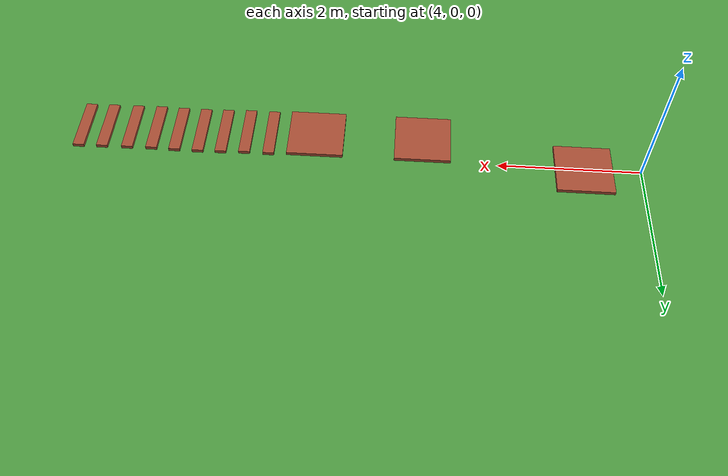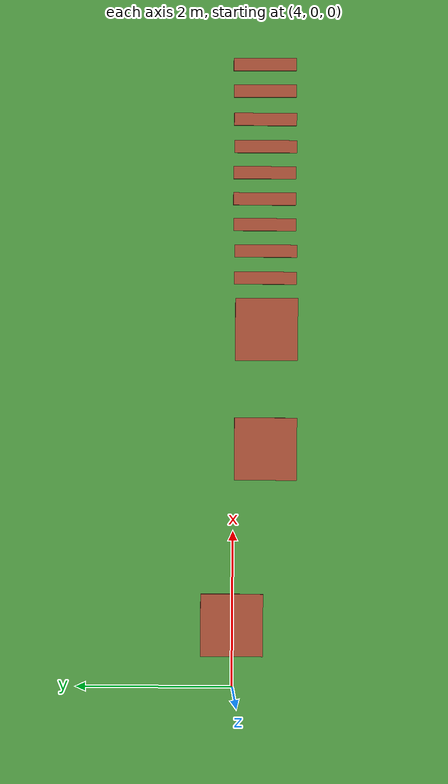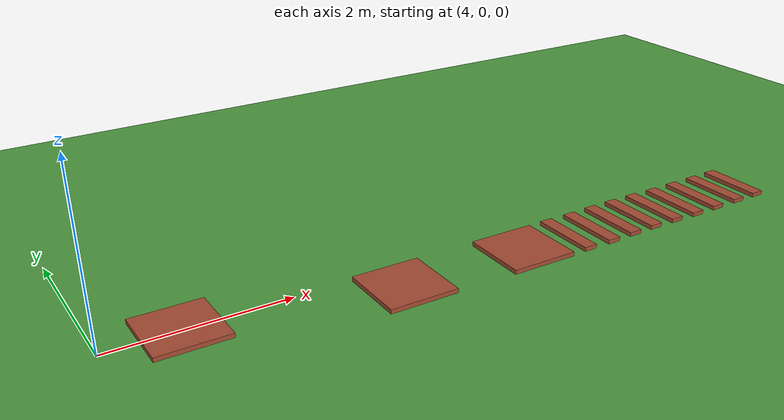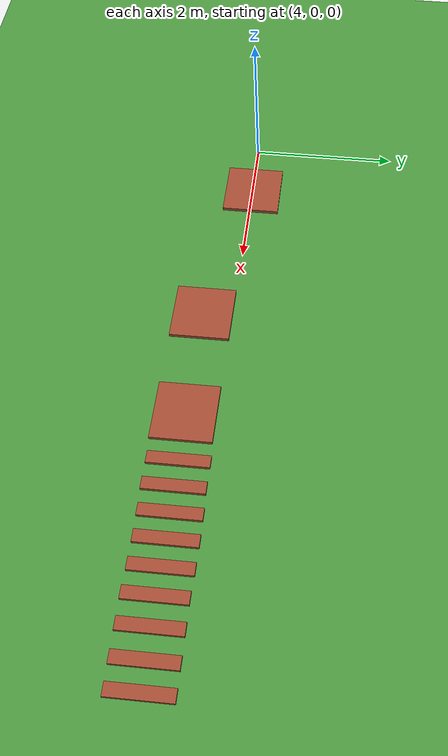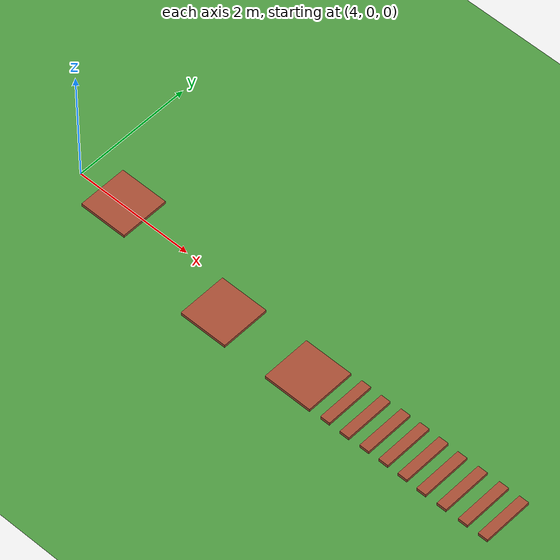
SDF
<sdf version="1.6">
 <world name="default">
  <model name="ground_plane">
   <static>1</static>
   <link name="link">
    <collision name="collision">
     <geometry><plane><normal>0 0 1</normal><size>100 100</size></plane></geometry>
     <surface>
      <contact><collide_bitmask>65535</collide_bitmask></contact>
      <friction><ode><mu>100</mu><mu2>50</mu2></ode></friction>
     </surface>
    </collision>
    <visual name="visual">
     <cast_shadows>0</cast_shadows>
     <geometry><plane><normal>0 0 1</normal><size>100 100</size></plane></geometry>
     <material>
      <script><uri>file://media/materials/scripts/gazebo.material</uri><name>Gazebo/Grass</name></script>
     </material>
    </visual>
   </link>
  </model>
  <model name="terrain_box_5cm_0_clone">
   <link name="link">
    <inertial>
     <mass>10</mass>
     <inertia><ixx>1.66667</ixx><ixy>0</ixy><ixz>0</ixz><iyy>1.66667</iyy><iyz>0</iyz><izz>1.66667</izz></inertia>
    </inertial>
    <sensor name="test" type="contact">
     <always_on>1</always_on>
     <update_rate>200</update_rate>
     <visualize>1</visualize>
     <contact><collision>collision</collision><topic>__default_topic__</topic></contact>
    </sensor>
    <visual name="visual">
     <geometry><box><size>0.8 0.8 0.05</size></box></geometry>
     <material>
      <script><name>Gazebo/Bricks</name><uri>file://media/materials/scripts/gazebo.material</uri></script>
      <shader type="vertex"><normal_map>__default__</normal_map></shader>
      <ambient>0.3 0.3 0.3 1</ambient>
      <diffuse>0.7 0.7 0.7 1</diffuse>
      <specular>0.01 0.01 0.01 1</specular>
      <emissive>0 0 0 1</emissive>
     </material>
    </visual>
    <collision name="collision">
     <geometry><box><size>0.8 0.8 0.05</size></box></geometry>
     <surface>
      <friction>
       <ode><mu>1</mu><mu2>1</mu2><fdir1>0 0 0</fdir1><slip1>0</slip1><slip2>0</slip2></ode>
       <torsional>
        <coefficient>1</coefficient>
        <patch_radius>0</patch_radius>
        <surface_radius>0</surface_radius>
        <use_patch_radius>1</use_patch_radius>
        <ode><slip>0</slip></ode>
       </torsional>
      </friction>
      <bounce><restitution_coefficient>0</restitution_coefficient><threshold>1e+06</threshold></bounce>
      <contact>
       <collide_without_contact>0</collide_without_contact>
       <collide_without_contact_bitmask>1</collide_without_contact_bitmask>
       <collide_bitmask>1</collide_bitmask>
       <ode>
        <soft_cfm>0</soft_cfm>
        <soft_erp>0.2</soft_erp>
        <kp>1e+13</kp>
        <kd>1</kd>
        <max_vel>0.01</max_vel>
        <min_depth>0.001</min_depth>
       </ode>
       <bullet>
        <split_impulse>1</split_impulse>
        <split_impulse_penetration_threshold>-0.01</split_impulse_penetration_threshold>
        <soft_cfm>0</soft_cfm>
        <soft_erp>0.2</soft_erp>
        <kp>1e+13</kp>
        <kd>1</kd>
       </bullet>
      </contact>
     </surface>
    </collision>
   </link>
   <static>1</static>
   <pose>4.80052 0.012674 0.024797 0 -0 0</pose>
  </model>
  <model name="terrain_box_5cm_0_clone_0_clone">
   <link name="link">
    <inertial>
     <mass>10</mass>
     <inertia><ixx>1.66667</ixx><ixy>0</ixy><ixz>0</ixz><iyy>1.66667</iyy><iyz>0</iyz><izz>1.66667</izz></inertia>
    </inertial>
    <sensor name="test" type="contact">
     <always_on>1</always_on>
     <update_rate>200</update_rate>
     <visualize>1</visualize>
     <contact><collision>collision</collision><topic>__default_topic__</topic></contact>
    </sensor>
    <visual name="visual">
     <geometry><box><size>0.8 0.8 0.05</size></box></geometry>
     <material>
      <script><name>Gazebo/Bricks</name><uri>file://media/materials/scripts/gazebo.material</uri></script>
      <shader type="vertex"><normal_map>__default__</normal_map></shader>
      <ambient>0.3 0.3 0.3 1</ambient>
      <diffuse>0.7 0.7 0.7 1</diffuse>
      <specular>0.01 0.01 0.01 1</specular>
      <emissive>0 0 0 1</emissive>
     </material>
    </visual>
    <collision name="collision">
     <geometry><box><size>0.8 0.8 0.05</size></box></geometry>
     <surface>
      <friction>
       <ode><mu>1</mu><mu2>1</mu2><fdir1>0 0 0</fdir1><slip1>0</slip1><slip2>0</slip2></ode>
       <torsional>
        <coefficient>1</coefficient>
        <patch_radius>0</patch_radius>
        <surface_radius>0</surface_radius>
        <use_patch_radius>1</use_patch_radius>
        <ode><slip>0</slip></ode>
       </torsional>
      </friction>
      <bounce><restitution_coefficient>0</restitution_coefficient><threshold>1e+06</threshold></bounce>
      <contact>
       <collide_without_contact>0</collide_without_contact>
       <collide_without_contact_bitmask>1</collide_without_contact_bitmask>
       <collide_bitmask>1</collide_bitmask>
       <ode>
        <soft_cfm>0</soft_cfm>
        <soft_erp>0.2</soft_erp>
        <kp>1e+13</kp>
        <kd>1</kd>
        <max_vel>0.01</max_vel>
        <min_depth>0.001</min_depth>
       </ode>
       <bullet>
        <split_impulse>1</split_impulse>
        <split_impulse_penetration_threshold>-0.01</split_impulse_penetration_threshold>
        <soft_cfm>0</soft_cfm>
        <soft_erp>0.2</soft_erp>
        <kp>1e+13</kp>
        <kd>1</kd>
       </bullet>
      </contact>
     </surface>
    </collision>
   </link>
   <static>1</static>
   <pose>7.06126 -0.406716 0.024797 0 -0 0</pose>
  </model>
  <model name="terrain_box_5cm_0_clone_0_clone_1">
   <link name="link">
    <inertial>
     <mass>10</mass>
     <inertia><ixx>1.66667</ixx><ixy>0</ixy><ixz>0</ixz><iyy>1.66667</iyy><iyz>0</iyz><izz>1.66667</izz></inertia>
    </inertial>
    <sensor name="test" type="contact">
     <always_on>1</always_on>
     <update_rate>200</update_rate>
     <visualize>1</visualize>
     <contact><collision>collision</collision><topic>__default_topic__</topic></contact>
    </sensor>
    <visual name="visual">
     <geometry><box><size>0.8 0.8 0.05</size></box></geometry>
     <material>
      <script><name>Gazebo/Bricks</name><uri>file://media/materials/scripts/gazebo.material</uri></script>
      <shader type="vertex"><normal_map>__default__</normal_map></shader>
      <ambient>0.3 0.3 0.3 1</ambient>
      <diffuse>0.7 0.7 0.7 1</diffuse>
      <specular>0.01 0.01 0.01 1</specular>
      <emissive>0 0 0 1</emissive>
     </material>
    </visual>
    <collision name="collision">
     <geometry><box><size>0.8 0.8 0.05</size></box></geometry>
     <surface>
      <friction>
       <ode><mu>1</mu><mu2>1</mu2><fdir1>0 0 0</fdir1><slip1>0</slip1><slip2>0</slip2></ode>
       <torsional>
        <coefficient>1</coefficient>
        <patch_radius>0</patch_radius>
        <surface_radius>0</surface_radius>
        <use_patch_radius>1</use_patch_radius>
        <ode><slip>0</slip></ode>
       </torsional>
      </friction>
      <bounce><restitution_coefficient>0</restitution_coefficient><threshold>1e+06</threshold></bounce>
      <contact>
       <collide_without_contact>0</collide_without_contact>
       <collide_without_contact_bitmask>1</collide_without_contact_bitmask>
       <collide_bitmask>1</collide_bitmask>
       <ode>
        <soft_cfm>0</soft_cfm>
        <soft_erp>0.2</soft_erp>
        <kp>1e+13</kp>
        <kd>1</kd>
        <max_vel>0.01</max_vel>
        <min_depth>0.001</min_depth>
       </ode>
       <bullet>
        <split_impulse>1</split_impulse>
        <split_impulse_penetration_threshold>-0.01</split_impulse_penetration_threshold>
        <soft_cfm>0</soft_cfm>
        <soft_erp>0.2</soft_erp>
        <kp>1e+13</kp>
        <kd>1</kd>
       </bullet>
      </contact>
     </surface>
    </collision>
   </link>
   <static>1</static>
   <pose>8.59361 -0.40974 0.024797 0 -0 0</pose>
  </model>
  <model name="terrain_step_5cm_0_clone">
   <link name="link">
    <inertial>
     <mass>10</mass>
     <inertia><ixx>1.66667</ixx><ixy>0</ixy><ixz>0</ixz><iyy>1.66667</iyy><iyz>0</iyz><izz>1.66667</izz></inertia>
    </inertial>
    <sensor name="test" type="contact">
     <always_on>1</always_on>
     <update_rate>200</update_rate>
     <visualize>1</visualize>
     <contact><collision>collision</collision><topic>__default_topic__</topic></contact>
    </sensor>
    <visual name="visual">
     <geometry><box><size>0.16 0.8 0.05</size></box></geometry>
     <material>
      <script><name>Gazebo/Bricks</name><uri>file://media/materials/scripts/gazebo.material</uri></script>
      <shader type="vertex"><normal_map>__default__</normal_map></shader>
      <ambient>0.3 0.3 0.3 1</ambient>
      <diffuse>0.7 0.7 0.7 1</diffuse>
      <specular>0.01 0.01 0.01 1</specular>
      <emissive>0 0 0 1</emissive>
     </material>
    </visual>
    <collision name="collision">
     <geometry><box><size>0.16 0.8 0.05</size></box></geometry>
     <surface>
      <friction>
       <ode><mu>1</mu><mu2>1</mu2><fdir1>0 0 0</fdir1><slip1>0</slip1><slip2>0</slip2></ode>
       <torsional>
        <coefficient>1</coefficient>
        <patch_radius>0</patch_radius>
        <surface_radius>0</surface_radius>
        <use_patch_radius>1</use_patch_radius>
        <ode><slip>0</slip></ode>
       </torsional>
      </friction>
      <bounce><restitution_coefficient>0</restitution_coefficient><threshold>1e+06</threshold></bounce>
      <contact>
       <collide_without_contact>0</collide_without_contact>
       <collide_without_contact_bitmask>1</collide_without_contact_bitmask>
       <collide_bitmask>1</collide_bitmask>
       <ode>
        <soft_cfm>0</soft_cfm>
        <soft_erp>0.2</soft_erp>
        <kp>1e+13</kp>
        <kd>1</kd>
        <max_vel>0.01</max_vel>
        <min_depth>0.001</min_depth>
       </ode>
       <bullet>
        <split_impulse>1</split_impulse>
        <split_impulse_penetration_threshold>-0.01</split_impulse_penetration_threshold>
        <soft_cfm>0</soft_cfm>
        <soft_erp>0.2</soft_erp>
        <kp>1e+13</kp>
        <kd>1</kd>
       </bullet>
      </contact>
     </surface>
    </collision>
   </link>
   <static>1</static>
   <pose>9.25119 -0.392157 0.020814 0 -0 0</pose>
  </model>
  <model name="terrain_step_5cm_0_clone_1">
   <link name="link">
    <inertial>
     <mass>10</mass>
     <inertia><ixx>1.66667</ixx><ixy>0</ixy><ixz>0</ixz><iyy>1.66667</iyy><iyz>0</iyz><izz>1.66667</izz></inertia>
    </inertial>
    <sensor name="test" type="contact">
     <always_on>1</always_on>
     <update_rate>200</update_rate>
     <visualize>1</visualize>
     <contact><collision>collision</collision><topic>__default_topic__</topic></contact>
    </sensor>
    <visual name="visual">
     <geometry><box><size>0.16 0.8 0.05</size></box></geometry>
     <material>
      <script><name>Gazebo/Bricks</name><uri>file://media/materials/scripts/gazebo.material</uri></script>
      <shader type="vertex"><normal_map>__default__</normal_map></shader>
      <ambient>0.3 0.3 0.3 1</ambient>
      <diffuse>0.7 0.7 0.7 1</diffuse>
      <specular>0.01 0.01 0.01 1</specular>
      <emissive>0 0 0 1</emissive>
     </material>
    </visual>
    <collision name="collision">
     <geometry><box><size>0.16 0.8 0.05</size></box></geometry>
     <surface>
      <friction>
       <ode><mu>1</mu><mu2>1</mu2><fdir1>0 0 0</fdir1><slip1>0</slip1><slip2>0</slip2></ode>
       <torsional>
        <coefficient>1</coefficient>
        <patch_radius>0</patch_radius>
        <surface_radius>0</surface_radius>
        <use_patch_radius>1</use_patch_radius>
        <ode><slip>0</slip></ode>
       </torsional>
      </friction>
      <bounce><restitution_coefficient>0</restitution_coefficient><threshold>1e+06</threshold></bounce>
      <contact>
       <collide_without_contact>0</collide_without_contact>
       <collide_without_contact_bitmask>1</collide_without_contact_bitmask>
       <collide_bitmask>1</collide_bitmask>
       <ode>
        <soft_cfm>0</soft_cfm>
        <soft_erp>0.2</soft_erp>
        <kp>1e+13</kp>
        <kd>1</kd>
        <max_vel>0.01</max_vel>
        <min_depth>0.001</min_depth>
       </ode>
       <bullet>
        <split_impulse>1</split_impulse>
        <split_impulse_penetration_threshold>-0.01</split_impulse_penetration_threshold>
        <soft_cfm>0</soft_cfm>
        <soft_erp>0.2</soft_erp>
        <kp>1e+13</kp>
        <kd>1</kd>
       </bullet>
      </contact>
     </surface>
    </collision>
   </link>
   <static>1</static>
   <pose>9.59749 -0.393995 0.020814 0 -0 0</pose>
  </model>
  <model name="terrain_step_5cm_0_clone_3">
   <link name="link">
    <inertial>
     <mass>10</mass>
     <inertia><ixx>1.66667</ixx><ixy>0</ixy><ixz>0</ixz><iyy>1.66667</iyy><iyz>0</iyz><izz>1.66667</izz></inertia>
    </inertial>
    <sensor name="test" type="contact">
     <always_on>1</always_on>
     <update_rate>200</update_rate>
     <visualize>1</visualize>
     <contact><collision>collision</collision><topic>__default_topic__</topic></contact>
    </sensor>
    <visual name="visual">
     <geometry><box><size>0.16 0.8 0.05</size></box></geometry>
     <material>
      <script><name>Gazebo/Bricks</name><uri>file://media/materials/scripts/gazebo.material</uri></script>
      <shader type="vertex"><normal_map>__default__</normal_map></shader>
      <ambient>0.3 0.3 0.3 1</ambient>
      <diffuse>0.7 0.7 0.7 1</diffuse>
      <specular>0.01 0.01 0.01 1</specular>
      <emissive>0 0 0 1</emissive>
     </material>
    </visual>
    <collision name="collision">
     <geometry><box><size>0.16 0.8 0.05</size></box></geometry>
     <surface>
      <friction>
       <ode><mu>1</mu><mu2>1</mu2><fdir1>0 0 0</fdir1><slip1>0</slip1><slip2>0</slip2></ode>
       <torsional>
        <coefficient>1</coefficient>
        <patch_radius>0</patch_radius>
        <surface_radius>0</surface_radius>
        <use_patch_radius>1</use_patch_radius>
        <ode><slip>0</slip></ode>
       </torsional>
      </friction>
      <bounce><restitution_coefficient>0</restitution_coefficient><threshold>1e+06</threshold></bounce>
      <contact>
       <collide_without_contact>0</collide_without_contact>
       <collide_without_contact_bitmask>1</collide_without_contact_bitmask>
       <collide_bitmask>1</collide_bitmask>
       <ode>
        <soft_cfm>0</soft_cfm>
        <soft_erp>0.2</soft_erp>
        <kp>1e+13</kp>
        <kd>1</kd>
        <max_vel>0.01</max_vel>
        <min_depth>0.001</min_depth>
       </ode>
       <bullet>
        <split_impulse>1</split_impulse>
        <split_impulse_penetration_threshold>-0.01</split_impulse_penetration_threshold>
        <soft_cfm>0</soft_cfm>
        <soft_erp>0.2</soft_erp>
        <kp>1e+13</kp>
        <kd>1</kd>
       </bullet>
      </contact>
     </surface>
    </collision>
   </link>
   <static>1</static>
   <pose>9.93553 -0.380686 0.020814 0 -0 0</pose>
  </model>
  <model name="terrain_step_5cm_0_clone_5">
   <link name="link">
    <inertial>
     <mass>10</mass>
     <inertia><ixx>1.66667</ixx><ixy>0</ixy><ixz>0</ixz><iyy>1.66667</iyy><iyz>0</iyz><izz>1.66667</izz></inertia>
    </inertial>
    <sensor name="test" type="contact">
     <always_on>1</always_on>
     <update_rate>200</update_rate>
     <visualize>1</visualize>
     <contact><collision>collision</collision><topic>__default_topic__</topic></contact>
    </sensor>
    <visual name="visual">
     <geometry><box><size>0.16 0.8 0.05</size></box></geometry>
     <material>
      <script><name>Gazebo/Bricks</name><uri>file://media/materials/scripts/gazebo.material</uri></script>
      <shader type="vertex"><normal_map>__default__</normal_map></shader>
      <ambient>0.3 0.3 0.3 1</ambient>
      <diffuse>0.7 0.7 0.7 1</diffuse>
      <specular>0.01 0.01 0.01 1</specular>
      <emissive>0 0 0 1</emissive>
     </material>
    </visual>
    <collision name="collision">
     <geometry><box><size>0.16 0.8 0.05</size></box></geometry>
     <surface>
      <friction>
       <ode><mu>1</mu><mu2>1</mu2><fdir1>0 0 0</fdir1><slip1>0</slip1><slip2>0</slip2></ode>
       <torsional>
        <coefficient>1</coefficient>
        <patch_radius>0</patch_radius>
        <surface_radius>0</surface_radius>
        <use_patch_radius>1</use_patch_radius>
        <ode><slip>0</slip></ode>
       </torsional>
      </friction>
      <bounce><restitution_coefficient>0</restitution_coefficient><threshold>1e+06</threshold></bounce>
      <contact>
       <collide_without_contact>0</collide_without_contact>
       <collide_without_contact_bitmask>1</collide_without_contact_bitmask>
       <collide_bitmask>1</collide_bitmask>
       <ode>
        <soft_cfm>0</soft_cfm>
        <soft_erp>0.2</soft_erp>
        <kp>1e+13</kp>
        <kd>1</kd>
        <max_vel>0.01</max_vel>
        <min_depth>0.001</min_depth>
       </ode>
       <bullet>
        <split_impulse>1</split_impulse>
        <split_impulse_penetration_threshold>-0.01</split_impulse_penetration_threshold>
        <soft_cfm>0</soft_cfm>
        <soft_erp>0.2</soft_erp>
        <kp>1e+13</kp>
        <kd>1</kd>
       </bullet>
      </contact>
     </surface>
    </collision>
   </link>
   <static>1</static>
   <pose>10.2651 -0.374657 0.020814 0 -0 0</pose>
  </model>
  <model name="terrain_step_5cm_0_clone_7">
   <link name="link">
    <inertial>
     <mass>10</mass>
     <inertia><ixx>1.66667</ixx><ixy>0</ixy><ixz>0</ixz><iyy>1.66667</iyy><iyz>0</iyz><izz>1.66667</izz></inertia>
    </inertial>
    <sensor name="test" type="contact">
     <always_on>1</always_on>
     <update_rate>200</update_rate>
     <visualize>1</visualize>
     <contact><collision>collision</collision><topic>__default_topic__</topic></contact>
    </sensor>
    <visual name="visual">
     <geometry><box><size>0.16 0.8 0.05</size></box></geometry>
     <material>
      <script><name>Gazebo/Bricks</name><uri>file://media/materials/scripts/gazebo.material</uri></script>
      <shader type="vertex"><normal_map>__default__</normal_map></shader>
      <ambient>0.3 0.3 0.3 1</ambient>
      <diffuse>0.7 0.7 0.7 1</diffuse>
      <specular>0.01 0.01 0.01 1</specular>
      <emissive>0 0 0 1</emissive>
     </material>
    </visual>
    <collision name="collision">
     <geometry><box><size>0.16 0.8 0.05</size></box></geometry>
     <surface>
      <friction>
       <ode><mu>1</mu><mu2>1</mu2><fdir1>0 0 0</fdir1><slip1>0</slip1><slip2>0</slip2></ode>
       <torsional>
        <coefficient>1</coefficient>
        <patch_radius>0</patch_radius>
        <surface_radius>0</surface_radius>
        <use_patch_radius>1</use_patch_radius>
        <ode><slip>0</slip></ode>
       </torsional>
      </friction>
      <bounce><restitution_coefficient>0</restitution_coefficient><threshold>1e+06</threshold></bounce>
      <contact>
       <collide_without_contact>0</collide_without_contact>
       <collide_without_contact_bitmask>1</collide_without_contact_bitmask>
       <collide_bitmask>1</collide_bitmask>
       <ode>
        <soft_cfm>0</soft_cfm>
        <soft_erp>0.2</soft_erp>
        <kp>1e+13</kp>
        <kd>1</kd>
        <max_vel>0.01</max_vel>
        <min_depth>0.001</min_depth>
       </ode>
       <bullet>
        <split_impulse>1</split_impulse>
        <split_impulse_penetration_threshold>-0.01</split_impulse_penetration_threshold>
        <soft_cfm>0</soft_cfm>
        <soft_erp>0.2</soft_erp>
        <kp>1e+13</kp>
        <kd>1</kd>
       </bullet>
      </contact>
     </surface>
    </collision>
   </link>
   <static>1</static>
   <pose>10.6008 -0.376245 0.020814 0 -0 0</pose>
  </model>
  <model name="terrain_step_5cm_0_clone_9">
   <link name="link">
    <inertial>
     <mass>10</mass>
     <inertia><ixx>1.66667</ixx><ixy>0</ixy><ixz>0</ixz><iyy>1.66667</iyy><iyz>0</iyz><izz>1.66667</izz></inertia>
    </inertial>
    <sensor name="test" type="contact">
     <always_on>1</always_on>
     <update_rate>200</update_rate>
     <visualize>1</visualize>
     <contact><collision>collision</collision><topic>__default_topic__</topic></contact>
    </sensor>
    <visual name="visual">
     <geometry><box><size>0.16 0.8 0.05</size></box></geometry>
     <material>
      <script><name>Gazebo/Bricks</name><uri>file://media/materials/scripts/gazebo.material</uri></script>
      <shader type="vertex"><normal_map>__default__</normal_map></shader>
      <ambient>0.3 0.3 0.3 1</ambient>
      <diffuse>0.7 0.7 0.7 1</diffuse>
      <specular>0.01 0.01 0.01 1</specular>
      <emissive>0 0 0 1</emissive>
     </material>
    </visual>
    <collision name="collision">
     <geometry><box><size>0.16 0.8 0.05</size></box></geometry>
     <surface>
      <friction>
       <ode><mu>1</mu><mu2>1</mu2><fdir1>0 0 0</fdir1><slip1>0</slip1><slip2>0</slip2></ode>
       <torsional>
        <coefficient>1</coefficient>
        <patch_radius>0</patch_radius>
        <surface_radius>0</surface_radius>
        <use_patch_radius>1</use_patch_radius>
        <ode><slip>0</slip></ode>
       </torsional>
      </friction>
      <bounce><restitution_coefficient>0</restitution_coefficient><threshold>1e+06</threshold></bounce>
      <contact>
       <collide_without_contact>0</collide_without_contact>
       <collide_without_contact_bitmask>1</collide_without_contact_bitmask>
       <collide_bitmask>1</collide_bitmask>
       <ode>
        <soft_cfm>0</soft_cfm>
        <soft_erp>0.2</soft_erp>
        <kp>1e+13</kp>
        <kd>1</kd>
        <max_vel>0.01</max_vel>
        <min_depth>0.001</min_depth>
       </ode>
       <bullet>
        <split_impulse>1</split_impulse>
        <split_impulse_penetration_threshold>-0.01</split_impulse_penetration_threshold>
        <soft_cfm>0</soft_cfm>
        <soft_erp>0.2</soft_erp>
        <kp>1e+13</kp>
        <kd>1</kd>
       </bullet>
      </contact>
     </surface>
    </collision>
   </link>
   <static>1</static>
   <pose>10.9353 -0.385256 0.020814 0 -0 0</pose>
  </model>
  <model name="terrain_step_5cm_0_clone_11">
   <link name="link">
    <inertial>
     <mass>10</mass>
     <inertia><ixx>1.66667</ixx><ixy>0</ixy><ixz>0</ixz><iyy>1.66667</iyy><iyz>0</iyz><izz>1.66667</izz></inertia>
    </inertial>
    <sensor name="test" type="contact">
     <always_on>1</always_on>
     <update_rate>200</update_rate>
     <visualize>1</visualize>
     <contact><collision>collision</collision><topic>__default_topic__</topic></contact>
    </sensor>
    <visual name="visual">
     <geometry><box><size>0.16 0.8 0.05</size></box></geometry>
     <material>
      <script><name>Gazebo/Bricks</name><uri>file://media/materials/scripts/gazebo.material</uri></script>
      <shader type="vertex"><normal_map>__default__</normal_map></shader>
      <ambient>0.3 0.3 0.3 1</ambient>
      <diffuse>0.7 0.7 0.7 1</diffuse>
      <specular>0.01 0.01 0.01 1</specular>
      <emissive>0 0 0 1</emissive>
     </material>
    </visual>
    <collision name="collision">
     <geometry><box><size>0.16 0.8 0.05</size></box></geometry>
     <surface>
      <friction>
       <ode><mu>1</mu><mu2>1</mu2><fdir1>0 0 0</fdir1><slip1>0</slip1><slip2>0</slip2></ode>
       <torsional>
        <coefficient>1</coefficient>
        <patch_radius>0</patch_radius>
        <surface_radius>0</surface_radius>
        <use_patch_radius>1</use_patch_radius>
        <ode><slip>0</slip></ode>
       </torsional>
      </friction>
      <bounce><restitution_coefficient>0</restitution_coefficient><threshold>1e+06</threshold></bounce>
      <contact>
       <collide_without_contact>0</collide_without_contact>
       <collide_without_contact_bitmask>1</collide_without_contact_bitmask>
       <collide_bitmask>1</collide_bitmask>
       <ode>
        <soft_cfm>0</soft_cfm>
        <soft_erp>0.2</soft_erp>
        <kp>1e+13</kp>
        <kd>1</kd>
        <max_vel>0.01</max_vel>
        <min_depth>0.001</min_depth>
       </ode>
       <bullet>
        <split_impulse>1</split_impulse>
        <split_impulse_penetration_threshold>-0.01</split_impulse_penetration_threshold>
        <soft_cfm>0</soft_cfm>
        <soft_erp>0.2</soft_erp>
        <kp>1e+13</kp>
        <kd>1</kd>
       </bullet>
      </contact>
     </surface>
    </collision>
   </link>
   <static>1</static>
   <pose>11.2842 -0.379848 0.020814 0 -0 0</pose>
  </model>
  <model name="terrain_step_5cm_0_clone_13">
   <link name="link">
    <inertial>
     <mass>10</mass>
     <inertia><ixx>1.66667</ixx><ixy>0</ixy><ixz>0</ixz><iyy>1.66667</iyy><iyz>0</iyz><izz>1.66667</izz></inertia>
    </inertial>
    <sensor name="test" type="contact">
     <always_on>1</always_on>
     <update_rate>200</update_rate>
     <visualize>1</visualize>
     <contact><collision>collision</collision><topic>__default_topic__</topic></contact>
    </sensor>
    <visual name="visual">
     <geometry><box><size>0.16 0.8 0.05</size></box></geometry>
     <material>
      <script><name>Gazebo/Bricks</name><uri>file://media/materials/scripts/gazebo.material</uri></script>
      <shader type="vertex"><normal_map>__default__</normal_map></shader>
      <ambient>0.3 0.3 0.3 1</ambient>
      <diffuse>0.7 0.7 0.7 1</diffuse>
      <specular>0.01 0.01 0.01 1</specular>
      <emissive>0 0 0 1</emissive>
     </material>
    </visual>
    <collision name="collision">
     <geometry><box><size>0.16 0.8 0.05</size></box></geometry>
     <surface>
      <friction>
       <ode><mu>1</mu><mu2>1</mu2><fdir1>0 0 0</fdir1><slip1>0</slip1><slip2>0</slip2></ode>
       <torsional>
        <coefficient>1</coefficient>
        <patch_radius>0</patch_radius>
        <surface_radius>0</surface_radius>
        <use_patch_radius>1</use_patch_radius>
        <ode><slip>0</slip></ode>
       </torsional>
      </friction>
      <bounce><restitution_coefficient>0</restitution_coefficient><threshold>1e+06</threshold></bounce>
      <contact>
       <collide_without_contact>0</collide_without_contact>
       <collide_without_contact_bitmask>1</collide_without_contact_bitmask>
       <collide_bitmask>1</collide_bitmask>
       <ode>
        <soft_cfm>0</soft_cfm>
        <soft_erp>0.2</soft_erp>
        <kp>1e+13</kp>
        <kd>1</kd>
        <max_vel>0.01</max_vel>
        <min_depth>0.001</min_depth>
       </ode>
       <bullet>
        <split_impulse>1</split_impulse>
        <split_impulse_penetration_threshold>-0.01</split_impulse_penetration_threshold>
        <soft_cfm>0</soft_cfm>
        <soft_erp>0.2</soft_erp>
        <kp>1e+13</kp>
        <kd>1</kd>
       </bullet>
      </contact>
     </surface>
    </collision>
   </link>
   <static>1</static>
   <pose>11.6467 -0.374843 0.020814 0 -0 0</pose>
  </model>
  <model name="terrain_step_5cm_0_clone_15">
   <link name="link">
    <inertial>
     <mass>10</mass>
     <inertia><ixx>1.66667</ixx><ixy>0</ixy><ixz>0</ixz><iyy>1.66667</iyy><iyz>0</iyz><izz>1.66667</izz></inertia>
    </inertial>
    <sensor name="test" type="contact">
     <always_on>1</always_on>
     <update_rate>200</update_rate>
     <visualize>1</visualize>
     <contact><collision>collision</collision><topic>__default_topic__</topic></contact>
    </sensor>
    <visual name="visual">
     <geometry><box><size>0.16 0.8 0.05</size></box></geometry>
     <material>
      <script><name>Gazebo/Bricks</name><uri>file://media/materials/scripts/gazebo.material</uri></script>
      <shader type="vertex"><normal_map>__default__</normal_map></shader>
      <ambient>0.3 0.3 0.3 1</ambient>
      <diffuse>0.7 0.7 0.7 1</diffuse>
      <specular>0.01 0.01 0.01 1</specular>
      <emissive>0 0 0 1</emissive>
     </material>
    </visual>
    <collision name="collision">
     <geometry><box><size>0.16 0.8 0.05</size></box></geometry>
     <surface>
      <friction>
       <ode><mu>1</mu><mu2>1</mu2><fdir1>0 0 0</fdir1><slip1>0</slip1><slip2>0</slip2></ode>
       <torsional>
        <coefficient>1</coefficient>
        <patch_radius>0</patch_radius>
        <surface_radius>0</surface_radius>
        <use_patch_radius>1</use_patch_radius>
        <ode><slip>0</slip></ode>
       </torsional>
      </friction>
      <bounce><restitution_coefficient>0</restitution_coefficient><threshold>1e+06</threshold></bounce>
      <contact>
       <collide_without_contact>0</collide_without_contact>
       <collide_without_contact_bitmask>1</collide_without_contact_bitmask>
       <collide_bitmask>1</collide_bitmask>
       <ode>
        <soft_cfm>0</soft_cfm>
        <soft_erp>0.2</soft_erp>
        <kp>1e+13</kp>
        <kd>1</kd>
        <max_vel>0.01</max_vel>
        <min_depth>0.001</min_depth>
       </ode>
       <bullet>
        <split_impulse>1</split_impulse>
        <split_impulse_penetration_threshold>-0.01</split_impulse_penetration_threshold>
        <soft_cfm>0</soft_cfm>
        <soft_erp>0.2</soft_erp>
        <kp>1e+13</kp>
        <kd>1</kd>
       </bullet>
      </contact>
     </surface>
    </collision>
   </link>
   <static>1</static>
   <pose>11.9861 -0.369237 0.020814 0 -0 0</pose>
  </model>
 </world>
</sdf>
